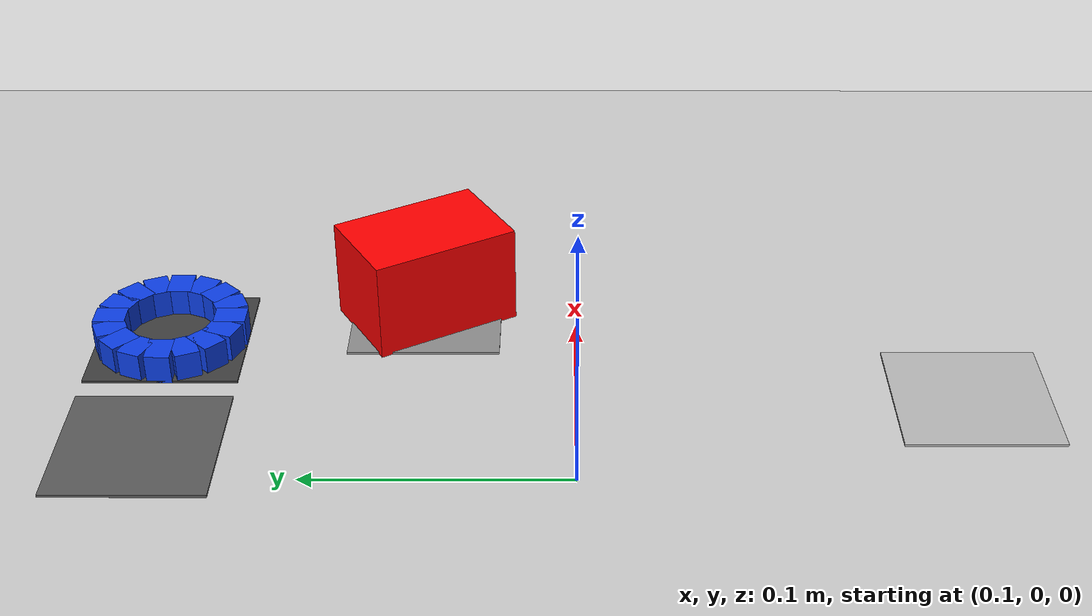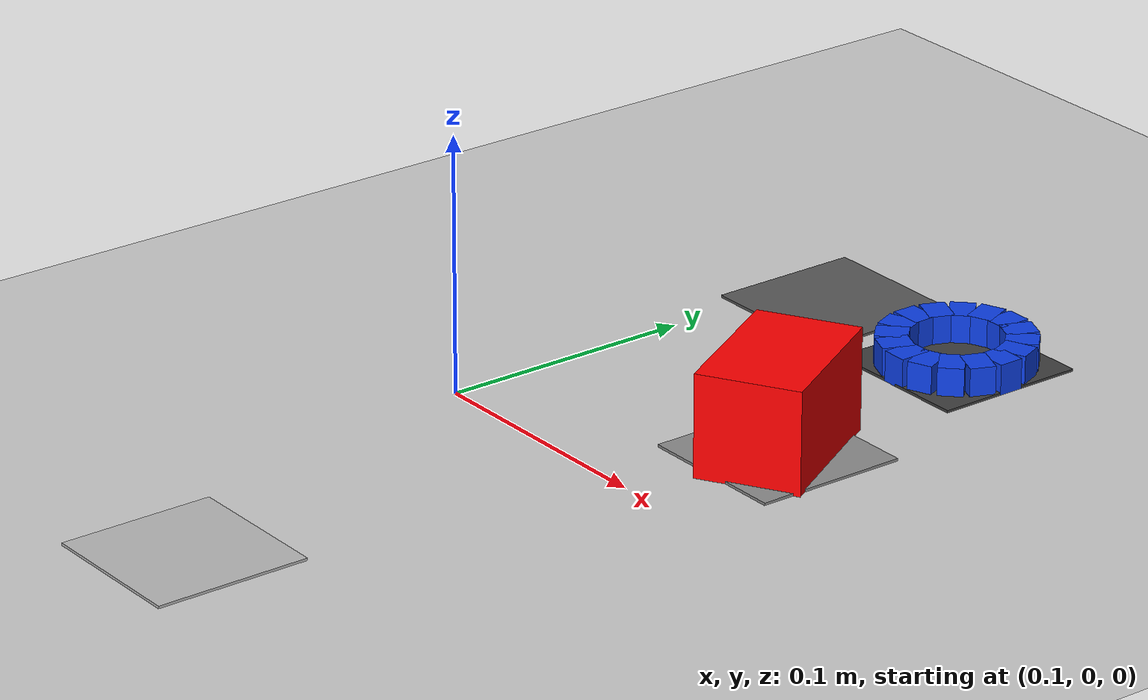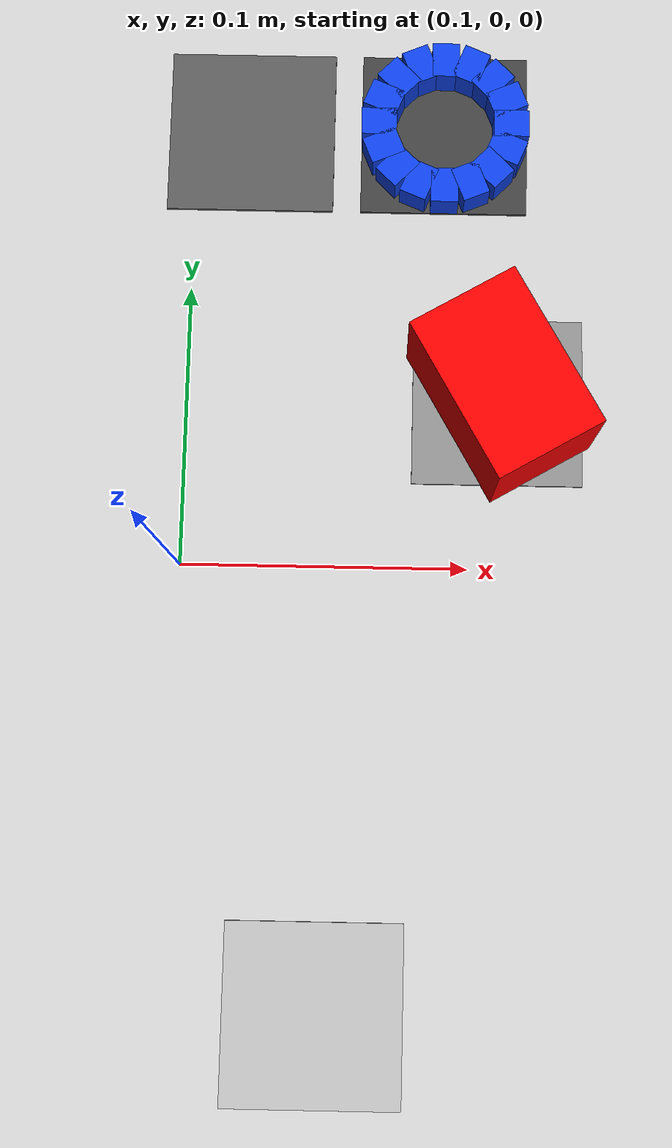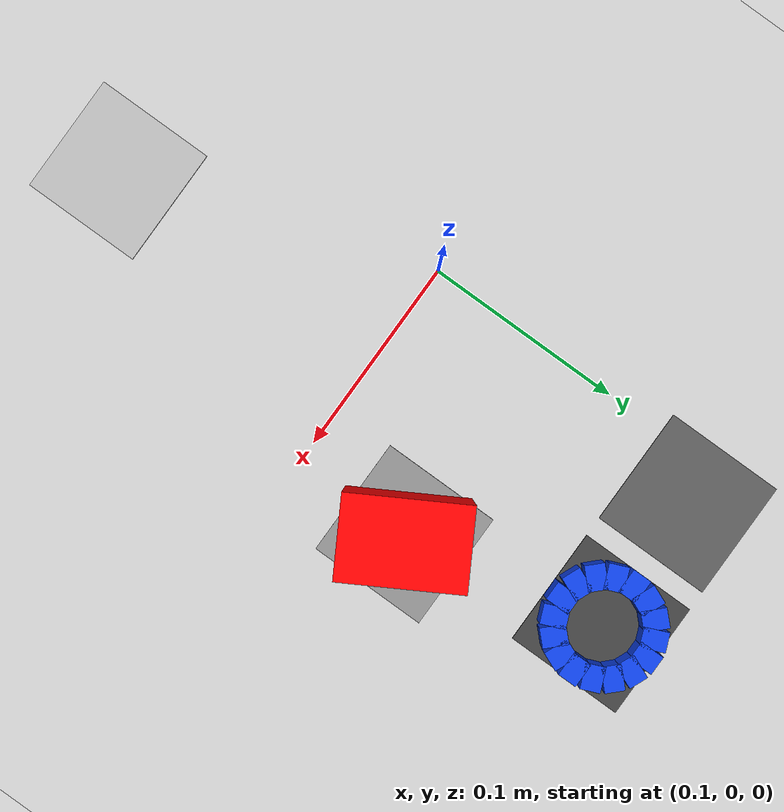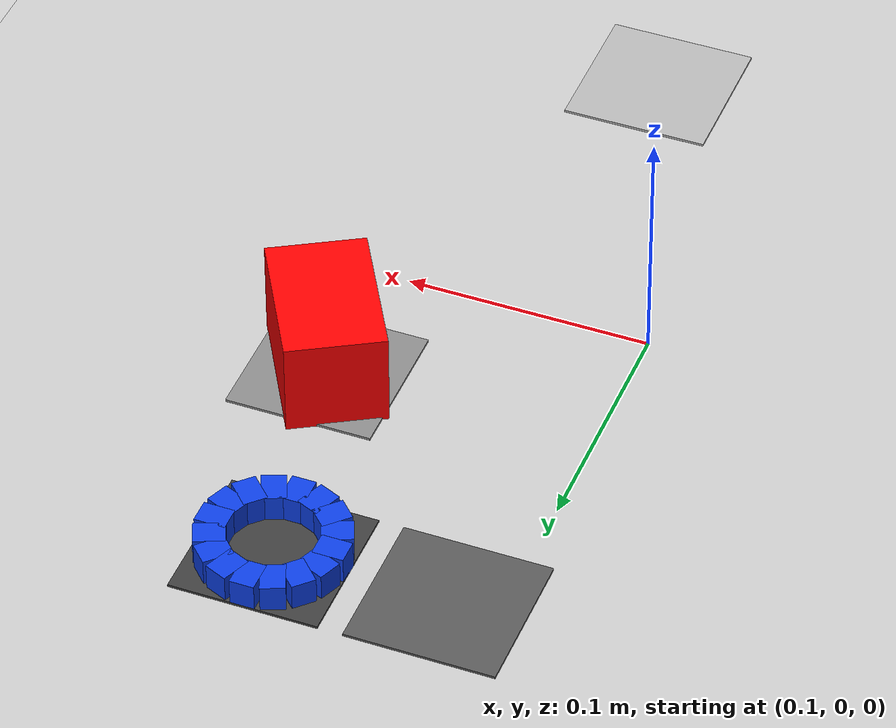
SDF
<?xml version="1.0"?>
<sdf version="1.10">
  <world name="empty">
    <physics name="1ms" type="ignored">
      <!-- 파지는 접촉이 지배한다. scene_one_block과 같은 이유로 1ms. -->
      <max_step_size>0.001</max_step_size>
      <real_time_factor>1</real_time_factor>
      <real_time_update_rate>1000</real_time_update_rate>
    </physics>
    <plugin name="gz::sim::systems::Physics" filename="gz-sim-physics-system"/>
    <plugin name="gz::sim::systems::UserCommands" filename="gz-sim-user-commands-system"/>
    <plugin name="gz::sim::systems::SceneBroadcaster" filename="gz-sim-scene-broadcaster-system"/>
    <plugin name="gz::sim::systems::Contact" filename="gz-sim-contact-system"/>
    <!-- 카메라 렌더링에 필요한 Sensors 시스템 -->
    <plugin name="gz::sim::systems::Sensors" filename="gz-sim-sensors-system">
      <render_engine>ogre2</render_engine>
    </plugin>
    <gravity>0 0 -9.8</gravity>
    <scene>
      <ambient>0.4 0.4 0.4 1</ambient>
      <background>0.7 0.7 0.7 1</background>
      <shadows>true</shadows>
    </scene>

    <model name="ground_plane">
      <static>true</static>
      <link name="link">
        <collision name="collision">
          <geometry><plane><normal>0 0 1</normal><size>100 100</size></plane></geometry>
          <surface><friction><ode/></friction></surface>
        </collision>
        <visual name="visual">
          <geometry><plane><normal>0 0 1</normal><size>100 100</size></plane></geometry>
          <material>
            <ambient>0.8 0.8 0.8 1</ambient>
            <diffuse>0.8 0.8 0.8 1</diffuse>
          </material>
        </visual>
      </link>
    </model>

    <light name="sun" type="directional">
      <pose>0 0 10 0 0 0</pose>
      <cast_shadows>true</cast_shadows>
      <intensity>1</intensity>
      <direction>-0.5 0.1 -0.9</direction>
      <diffuse>0.8 0.8 0.8 1</diffuse>
      <specular>0.2 0.2 0.2 1</specular>
      <attenuation><range>1000</range><linear>0.01</linear><constant>0.9</constant><quadratic>0.001</quadratic></attenuation>
    </light>

    <model name="zone_shelf_ring">
      <static>true</static>
      <pose>0.19 0.16 0.0005 0 0 0</pose>
      <link name="link">
        <visual name="visual">
          <geometry><box><size>0.06 0.06 0.001</size></box></geometry>
          <material><ambient>0.25 0.25 0.25 1</ambient><diffuse>0.25 0.25 0.25 1</diffuse></material>
        </visual>
      </link>
    </model>

    <model name="zone_shelf_block">
      <static>true</static>
      <pose>0.12 0.16 0.0005 0 0 0</pose>
      <link name="link">
        <visual name="visual">
          <geometry><box><size>0.06 0.06 0.001</size></box></geometry>
          <material><ambient>0.35 0.35 0.35 1</ambient><diffuse>0.35 0.35 0.35 1</diffuse></material>
        </visual>
      </link>
    </model>

    <model name="zone_work">
      <static>true</static>
      <pose>0.21 0.06 0.0005 0 0 0</pose>
      <link name="link">
        <visual name="visual">
          <geometry><box><size>0.06 0.06 0.001</size></box></geometry>
          <material><ambient>0.55 0.55 0.55 1</ambient><diffuse>0.55 0.55 0.55 1</diffuse></material>
        </visual>
      </link>
    </model>

    <model name="zone_serve">
      <static>true</static>
      <pose>0.15 -0.15 0.0005 0 0 0</pose>
      <link name="link">
        <visual name="visual">
          <geometry><box><size>0.06 0.06 0.001</size></box></geometry>
          <material><ambient>0.72 0.72 0.72 1</ambient><diffuse>0.72 0.72 0.72 1</diffuse></material>
        </visual>
      </link>
    </model>

    <!-- === 씬 오브젝트: 빨간 블록 1개, 가운데(작업 구역)에 방치 ===
         yaw 0.5236(30도)는 scene_one_block과 같은 이유다 - 축 정렬로 두면
         검출 yaw가 접기 구간 경계인 -90도로 나와 각도 정확도를 증명하지 못한다. -->
    <model name="red_block">
      <pose>0.21 0.06 0.02 0 0 0.5236</pose>
      <link name="link">
        <inertial>
          <mass>0.05</mass>
          <inertia><ixx>0.0000217</ixx><ixy>0</ixy><ixz>0</ixz><iyy>0.0000133</iyy><iyz>0</iyz><izz>0.0000217</izz></inertia>
        </inertial>
        <collision name="collision">
          <geometry><box><size>0.04 0.06 0.04</size></box></geometry>
          <surface><friction><ode><mu>1.0</mu><mu2>1.0</mu2></ode></friction></surface>
        </collision>
        <visual name="visual">
          <geometry><box><size>0.04 0.06 0.04</size></box></geometry>
          <material><ambient>1 0 0 1</ambient><diffuse>1 0 0 1</diffuse><specular>0.1 0.1 0.1 1</specular></material>
        </visual>
      </link>
    </model>

    <model name='blue_ring'>
      <pose>0.19 0.16 0 0 0 0</pose>
    <link name='link'>
      <inertial>
        <mass>0.04</mass>
        <!-- 속 빈 원통 근사: izz = m/2*(Ro^2+Ri^2), ixx=iyy = m/12*(3*(Ro^2+Ri^2)+h^2) -->
        <inertia>
          <ixx>1.254e-05</ixx><ixy>0</ixy><ixz>0</ixz>
          <iyy>1.254e-05</iyy><iyz>0</iyz><izz>2.413e-05</izz>
        </inertia>
      </inertial>
      <collision name='ring_col_0'>
        <pose>0.02375 0.00000 0.00600 0 0 0.00000</pose>
        <geometry><box><size>0.01250 0.00980 0.01200</size></box></geometry>
      </collision>
      <visual name='ring_vis_0'>
        <pose>0.02375 0.00000 0.00600 0 0 0.00000</pose>
        <geometry><box><size>0.01250 0.00980 0.01200</size></box></geometry>
        <material>
          <ambient>0.05 0.25 0.9 1</ambient>
          <diffuse>0.05 0.25 0.9 1</diffuse>
        </material>
      </visual>
      <collision name='ring_col_1'>
        <pose>0.02194 0.00909 0.00600 0 0 0.39270</pose>
        <geometry><box><size>0.01250 0.00980 0.01200</size></box></geometry>
      </collision>
      <visual name='ring_vis_1'>
        <pose>0.02194 0.00909 0.00600 0 0 0.39270</pose>
        <geometry><box><size>0.01250 0.00980 0.01200</size></box></geometry>
        <material>
          <ambient>0.05 0.25 0.9 1</ambient>
          <diffuse>0.05 0.25 0.9 1</diffuse>
        </material>
      </visual>
      <collision name='ring_col_2'>
        <pose>0.01679 0.01679 0.00600 0 0 0.78540</pose>
        <geometry><box><size>0.01250 0.00980 0.01200</size></box></geometry>
      </collision>
      <visual name='ring_vis_2'>
        <pose>0.01679 0.01679 0.00600 0 0 0.78540</pose>
        <geometry><box><size>0.01250 0.00980 0.01200</size></box></geometry>
        <material>
          <ambient>0.05 0.25 0.9 1</ambient>
          <diffuse>0.05 0.25 0.9 1</diffuse>
        </material>
      </visual>
      <collision name='ring_col_3'>
        <pose>0.00909 0.02194 0.00600 0 0 1.17810</pose>
        <geometry><box><size>0.01250 0.00980 0.01200</size></box></geometry>
      </collision>
      <visual name='ring_vis_3'>
        <pose>0.00909 0.02194 0.00600 0 0 1.17810</pose>
        <geometry><box><size>0.01250 0.00980 0.01200</size></box></geometry>
        <material>
          <ambient>0.05 0.25 0.9 1</ambient>
          <diffuse>0.05 0.25 0.9 1</diffuse>
        </material>
      </visual>
      <collision name='ring_col_4'>
        <pose>0.00000 0.02375 0.00600 0 0 1.57080</pose>
        <geometry><box><size>0.01250 0.00980 0.01200</size></box></geometry>
      </collision>
      <visual name='ring_vis_4'>
        <pose>0.00000 0.02375 0.00600 0 0 1.57080</pose>
        <geometry><box><size>0.01250 0.00980 0.01200</size></box></geometry>
        <material>
          <ambient>0.05 0.25 0.9 1</ambient>
          <diffuse>0.05 0.25 0.9 1</diffuse>
        </material>
      </visual>
      <collision name='ring_col_5'>
        <pose>-0.00909 0.02194 0.00600 0 0 1.96350</pose>
        <geometry><box><size>0.01250 0.00980 0.01200</size></box></geometry>
      </collision>
      <visual name='ring_vis_5'>
        <pose>-0.00909 0.02194 0.00600 0 0 1.96350</pose>
        <geometry><box><size>0.01250 0.00980 0.01200</size></box></geometry>
        <material>
          <ambient>0.05 0.25 0.9 1</ambient>
          <diffuse>0.05 0.25 0.9 1</diffuse>
        </material>
      </visual>
      <collision name='ring_col_6'>
        <pose>-0.01679 0.01679 0.00600 0 0 2.35619</pose>
        <geometry><box><size>0.01250 0.00980 0.01200</size></box></geometry>
      </collision>
      <visual name='ring_vis_6'>
        <pose>-0.01679 0.01679 0.00600 0 0 2.35619</pose>
        <geometry><box><size>0.01250 0.00980 0.01200</size></box></geometry>
        <material>
          <ambient>0.05 0.25 0.9 1</ambient>
          <diffuse>0.05 0.25 0.9 1</diffuse>
        </material>
      </visual>
      <collision name='ring_col_7'>
        <pose>-0.02194 0.00909 0.00600 0 0 2.74889</pose>
        <geometry><box><size>0.01250 0.00980 0.01200</size></box></geometry>
      </collision>
      <visual name='ring_vis_7'>
        <pose>-0.02194 0.00909 0.00600 0 0 2.74889</pose>
        <geometry><box><size>0.01250 0.00980 0.01200</size></box></geometry>
        <material>
          <ambient>0.05 0.25 0.9 1</ambient>
          <diffuse>0.05 0.25 0.9 1</diffuse>
        </material>
      </visual>
      <collision name='ring_col_8'>
        <pose>-0.02375 0.00000 0.00600 0 0 3.14159</pose>
        <geometry><box><size>0.01250 0.00980 0.01200</size></box></geometry>
      </collision>
      <visual name='ring_vis_8'>
        <pose>-0.02375 0.00000 0.00600 0 0 3.14159</pose>
        <geometry><box><size>0.01250 0.00980 0.01200</size></box></geometry>
        <material>
          <ambient>0.05 0.25 0.9 1</ambient>
          <diffuse>0.05 0.25 0.9 1</diffuse>
        </material>
      </visual>
      <collision name='ring_col_9'>
        <pose>-0.02194 -0.00909 0.00600 0 0 3.53429</pose>
        <geometry><box><size>0.01250 0.00980 0.01200</size></box></geometry>
      </collision>
      <visual name='ring_vis_9'>
        <pose>-0.02194 -0.00909 0.00600 0 0 3.53429</pose>
        <geometry><box><size>0.01250 0.00980 0.01200</size></box></geometry>
        <material>
          <ambient>0.05 0.25 0.9 1</ambient>
          <diffuse>0.05 0.25 0.9 1</diffuse>
        </material>
      </visual>
      <collision name='ring_col_10'>
        <pose>-0.01679 -0.01679 0.00600 0 0 3.92699</pose>
        <geometry><box><size>0.01250 0.00980 0.01200</size></box></geometry>
      </collision>
      <visual name='ring_vis_10'>
        <pose>-0.01679 -0.01679 0.00600 0 0 3.92699</pose>
        <geometry><box><size>0.01250 0.00980 0.01200</size></box></geometry>
        <material>
          <ambient>0.05 0.25 0.9 1</ambient>
          <diffuse>0.05 0.25 0.9 1</diffuse>
        </material>
      </visual>
      <collision name='ring_col_11'>
        <pose>-0.00909 -0.02194 0.00600 0 0 4.31969</pose>
        <geometry><box><size>0.01250 0.00980 0.01200</size></box></geometry>
      </collision>
      <visual name='ring_vis_11'>
        <pose>-0.00909 -0.02194 0.00600 0 0 4.31969</pose>
        <geometry><box><size>0.01250 0.00980 0.01200</size></box></geometry>
        <material>
          <ambient>0.05 0.25 0.9 1</ambient>
          <diffuse>0.05 0.25 0.9 1</diffuse>
        </material>
      </visual>
      <collision name='ring_col_12'>
        <pose>-0.00000 -0.02375 0.00600 0 0 4.71239</pose>
        <geometry><box><size>0.01250 0.00980 0.01200</size></box></geometry>
      </collision>
      <visual name='ring_vis_12'>
        <pose>-0.00000 -0.02375 0.00600 0 0 4.71239</pose>
        <geometry><box><size>0.01250 0.00980 0.01200</size></box></geometry>
        <material>
          <ambient>0.05 0.25 0.9 1</ambient>
          <diffuse>0.05 0.25 0.9 1</diffuse>
        </material>
      </visual>
      <collision name='ring_col_13'>
        <pose>0.00909 -0.02194 0.00600 0 0 5.10509</pose>
        <geometry><box><size>0.01250 0.00980 0.01200</size></box></geometry>
      </collision>
      <visual name='ring_vis_13'>
        <pose>0.00909 -0.02194 0.00600 0 0 5.10509</pose>
        <geometry><box><size>0.01250 0.00980 0.01200</size></box></geometry>
        <material>
          <ambient>0.05 0.25 0.9 1</ambient>
          <diffuse>0.05 0.25 0.9 1</diffuse>
        </material>
      </visual>
      <collision name='ring_col_14'>
        <pose>0.01679 -0.01679 0.00600 0 0 5.49779</pose>
        <geometry><box><size>0.01250 0.00980 0.01200</size></box></geometry>
      </collision>
      <visual name='ring_vis_14'>
        <pose>0.01679 -0.01679 0.00600 0 0 5.49779</pose>
        <geometry><box><size>0.01250 0.00980 0.01200</size></box></geometry>
        <material>
          <ambient>0.05 0.25 0.9 1</ambient>
          <diffuse>0.05 0.25 0.9 1</diffuse>
        </material>
      </visual>
      <collision name='ring_col_15'>
        <pose>0.02194 -0.00909 0.00600 0 0 5.89049</pose>
        <geometry><box><size>0.01250 0.00980 0.01200</size></box></geometry>
      </collision>
      <visual name='ring_vis_15'>
        <pose>0.02194 -0.00909 0.00600 0 0 5.89049</pose>
        <geometry><box><size>0.01250 0.00980 0.01200</size></box></geometry>
        <material>
          <ambient>0.05 0.25 0.9 1</ambient>
          <diffuse>0.05 0.25 0.9 1</diffuse>
        </material>
      </visual>
    </link>
  </model>

  </world>
</sdf>
